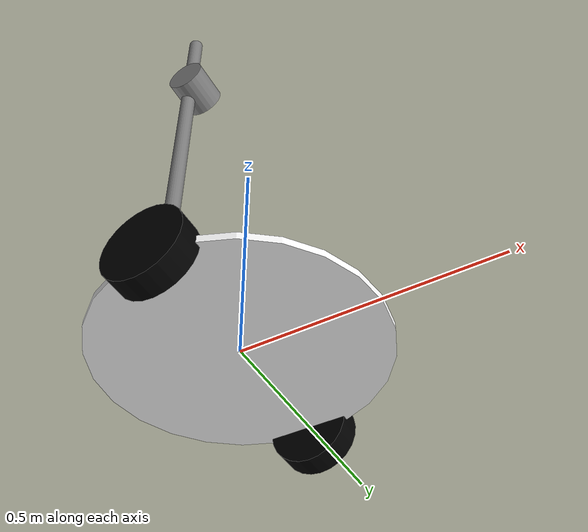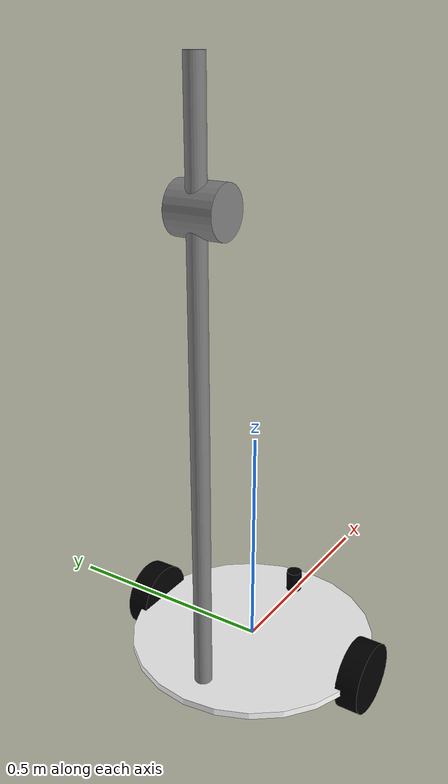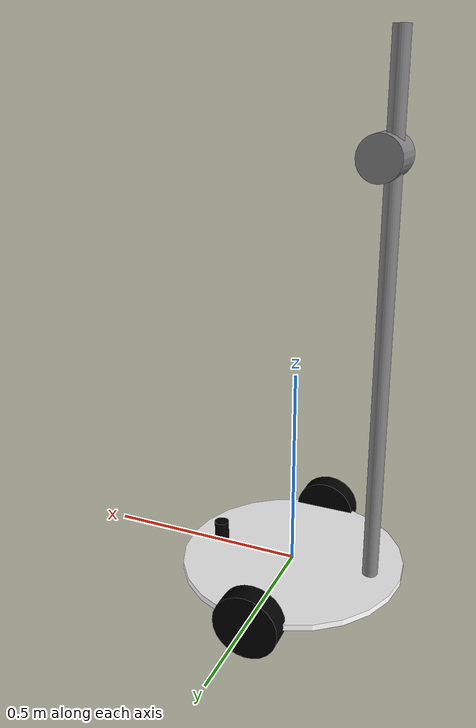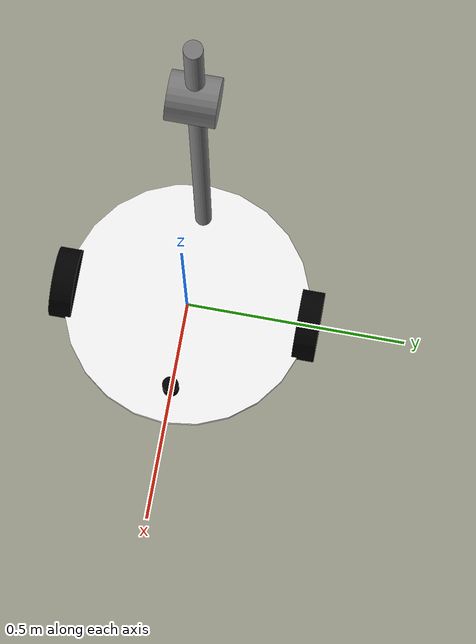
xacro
<?xml version="1.0"?>

<robot xmlns:xacro="http://www.ros.org/wiki/xacro" name="robot">

		<xacro:include filename="base.xacro" />
		<xacro:include filename="lidar.xacro" />
		<xacro:include filename="camera.xacro" />
		<xacro:include filename="motor_wheels.xacro" />
		<xacro:include filename="joints.xacro" />

</robot>

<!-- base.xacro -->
<!-- TODO medir parametros inerciais reais -->
<robot xmlns:xacro="https://www.ros.org/wiki/xacro">

	<material name="gray">
  		<color rgba="0.5 0.5 0.5 1"/>
  	</material>

	<material name="white">
  		<color rgba="1 1 1 1"/>
  	</material>

	<!-- Chutado -->
	<xacro:property name="CHASSI_MASS" value="1.0"/>

	<!-- Medidos -->
	<xacro:property name="CHASSI_RADIUS" value="0.28"/>
	<xacro:property name="CHASSI_THICKNESS" value="0.0155"/>

	<!-- Virtual base as recommended -->
	<link name="base_link"/>

	<!-- Real base, named as chassi -->
	<link name="chassi_link">

			<visual>
					<geometry>
							<cylinder length="${CHASSI_THICKNESS}" radius="${CHASSI_RADIUS}" />
					</geometry>

					<origin xyz="0 0 0" rpy="0 0 0" />
					<material name="white"/>
			</visual>

			<collision>
					<geometry>
						<cylinder length="${CHASSI_THICKNESS}" radius="${CHASSI_RADIUS}"/>
					</geometry>

					<origin xyz="0 0 0" rpy="0 0 0" />
			</collision>

			<inertial>
					<mass value="${CHASSI_MASS}"/>

					<!-- Centro de massa -->
					<origin xyz="0 0 0" rpy="0 0 0"/>
					<inertia
							ixx="${(1/12) * CHASSI_MASS * (3 * CHASSI_RADIUS * CHASSI_RADIUS + CHASSI_THICKNESS * CHASSI_THICKNESS)}" ixy="0" ixz="0"
							iyy="${(1/12) * CHASSI_MASS * (3 * CHASSI_RADIUS * CHASSI_RADIUS + CHASSI_THICKNESS * CHASSI_THICKNESS)}" iyz="0"
							izz="${(1/2) * CHASSI_MASS * CHASSI_RADIUS * CHASSI_RADIUS}"/>
			</inertial>
	</link>

	<!-- Chutado -->
    <xacro:property name="SUPPORT_MASS" value="0.5"/>

    <!-- Medidos -->
    <xacro:property name="SUPPORT_RADIUS" value="0.019"/>
    <xacro:property name="SUPPORT_THICKNESS" value="1.25"/>

	<link name="vertical_support_link">

			<visual>
				<geometry>
						<cylinder length="${SUPPORT_THICKNESS}" radius="${SUPPORT_RADIUS}"/>
				</geometry>

				<origin xyz="0 0 ${(1/2) * SUPPORT_THICKNESS}" rpy="0 0 0"/>

				<material name="gray"/>
			</visual>

			<collision>
				<geometry>
            			<cylinder length="${SUPPORT_THICKNESS}" radius="${SUPPORT_RADIUS}"/>
            	</geometry>

            	<origin xyz="0 0 ${(1/2) * SUPPORT_THICKNESS}" rpy="0 0 0"/>
			</collision>

			<inertial>
					<mass value="${SUPPORT_MASS}"/>

					<origin xyz="0 0 0" rpy="0 0 0"/>

					<inertia
                    		ixx="${(1/12) * SUPPORT_MASS * (3 * SUPPORT_RADIUS * SUPPORT_RADIUS +SUPPORT_THICKNESS * SUPPORT_THICKNESS)}" ixy="0" ixz="0"
                    		iyy="${(1/12) * SUPPORT_MASS * (3 * SUPPORT_RADIUS * SUPPORT_RADIUS + SUPPORT_THICKNESS * SUPPORT_THICKNESS)}" iyz="0"
                    		izz="${(1/2) * SUPPORT_MASS * SUPPORT_RADIUS * SUPPORT_RADIUS}"/>

			</inertial>
	</link>

</robot>

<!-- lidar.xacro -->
<robot xmlns:xacro="https://www.ros.org/wiki/xacro">

	<!-- Chutado -->
	<xacro:property name="LIDAR_MASS" value="1.0"/>

	<!-- Medidos -->
	<xacro:property name="LIDAR_RADIUS" value="0.0185"/>
	<xacro:property name="LIDAR_THICKNESS" value="0.05"/>

	<link name="lidar_link">

			<visual>
					<geometry>
							<cylinder length="${LIDAR_THICKNESS}" radius="${LIDAR_RADIUS}" />
					</geometry>

					<origin xyz="0 0 ${(1/2)*LIDAR_THICKNESS}" rpy="0 0 0" />
					<material name="black"/>
			</visual>

			<collision>
					<geometry>
						<cylinder length="${LIDAR_THICKNESS}" radius="${LIDAR_RADIUS}"/>
					</geometry>

					<origin xyz="0 0 ${(1/2)*LIDAR_THICKNESS}" rpy="0 0 0" />
			</collision>

			<inertial>
					<mass value="${LIDAR_MASS}"/>

					<!-- Centro de massa -->
					<origin xyz="0 0 0" rpy="0 0 0"/>
					<inertia
							ixx="${(1/12) * LIDAR_MASS * (3 * LIDAR_RADIUS * LIDAR_RADIUS + LIDAR_THICKNESS * LIDAR_THICKNESS)}" ixy="0" ixz="0"
							iyy="${(1/12) * LIDAR_MASS * (3 * LIDAR_RADIUS * LIDAR_RADIUS + LIDAR_THICKNESS * LIDAR_THICKNESS)}" iyz="0"
							izz="${(1/2) * LIDAR_MASS * LIDAR_RADIUS * LIDAR_RADIUS}"/>
			</inertial>
	</link>

</robot>

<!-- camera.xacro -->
<robot xmlns:xacro="https://www.ros.org/wiki/xacro">

	<!-- Chutado -->
	<xacro:property name="CAMERA_MASS" value="1.0"/>

	<!-- Medidos -->
	<xacro:property name="CAMERA_RADIUS" value="0.05"/>
	<xacro:property name="CAMERA_THICKNESS" value="0.1"/>

	<link name="camera_link">

			<visual>
					<geometry>
							<cylinder length="${CAMERA_THICKNESS}" radius="${CAMERA_RADIUS}" />
					</geometry>

					<origin xyz="0 0 0" rpy="0 0 0" />
					<material name="gray"/>
			</visual>

			<collision>
					<geometry>
						<cylinder length="${CAMERA_THICKNESS}" radius="${CAMERA_RADIUS}"/>
					</geometry>

					<origin xyz="0 0 0" rpy="0 0 0" />
			</collision>

			<inertial>
					<mass value="${CAMERA_MASS}"/>

					<!-- Centro de massa -->
					<origin xyz="0 0 0" rpy="0 0 0"/>
					<inertia
							ixx="${(1/12) * CAMERA_MASS * (3 * CAMERA_RADIUS * CAMERA_RADIUS + CAMERA_THICKNESS * CAMERA_THICKNESS)}" ixy="0" ixz="0"
							iyy="${(1/12) * CAMERA_MASS * (3 * CAMERA_RADIUS * CAMERA_RADIUS + CAMERA_THICKNESS * CAMERA_THICKNESS)}" iyz="0"
							izz="${(1/2) * CAMERA_MASS * CAMERA_RADIUS * CAMERA_RADIUS}"/>
			</inertial>
	</link>

</robot>

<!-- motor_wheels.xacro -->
<robot xmlns:xacro="http://www.ros.org/wiki/xacro">

	<material name="black">
		<color rgba="0 0 0 1"/>
	</material>

	<!-- Wheel Properties -->
	<xacro:property name="WHEEL_THICKNESS" value="0.051" />
	<xacro:property name="WHEEL_RADIUS" value="0.08" />

	<!-- Chutado -->
	<xacro:property name="WHEEL_MASS" value="1" />

	<xacro:macro name="wheel_link" params="position_prefix">

		<link name="${position_prefix}_wheel_link">

			<visual>

				<geometry>
					<cylinder length="${WHEEL_THICKNESS}" radius="${WHEEL_RADIUS}" />
				</geometry>
				<origin xyz="0 0 0" rpy="0 0 0" />
				<material name="black" />

			</visual>

			<collision>

				<geometry>
					<cylinder length="${WHEEL_THICKNESS}" radius="${WHEEL_RADIUS}" />
				</geometry>
				<origin xyz="0 0 0" rpy="0 0 0" />

			</collision>

			<inertial>
				<mass value="${WHEEL_MASS}" />

				<!-- Centro de massa -->
				<origin xyz="0 0 0" rpy="0 0 0" />
				<inertia ixx="${(1/12) * WHEEL_MASS * (3 * WHEEL_RADIUS * WHEEL_RADIUS + WHEEL_THICKNESS * WHEEL_THICKNESS)}" ixy="0" ixz="0" iyy="${(1/12) * WHEEL_MASS * (3 * WHEEL_RADIUS * WHEEL_RADIUS + WHEEL_THICKNESS * WHEEL_THICKNESS)}" iyz="0" izz="${(1/2) * WHEEL_MASS * WHEEL_RADIUS * WHEEL_RADIUS}" />
			</inertial>

		</link>
	</xacro:macro>

	<xacro:wheel_link position_prefix="left" />
	<xacro:wheel_link position_prefix="right" />

</robot>

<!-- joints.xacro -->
<robot xmlns:xacro="http://www.ros.org/wiki/xacro">

	<!-- Constants-->
	<xacro:property name="PI" value="3.14159" />

	<!-- Joint distance parameters -->
	<xacro:property name="CAMERA_HEIGHT" value="${(4/5)*SUPPORT_THICKNESS}" />
	<xacro:property name="BASE_LIDAR_DIST" value="0.2" />
	<xacro:property name="BASE_WHEEL_DIST" value="0.28" />
	<xacro:property name="BASE_SUPPORT_DIST" value="0.205" />
	<xacro:property name="CHASSI_HEIGHT" value="0.05" />

	<!-- To connect virtual (center of rotation) base to real one (chassi) -->
	<joint name="base_chassi_joint" type="fixed">
		<parent link="base_link" />
		<child link="chassi_link" />

		<origin xyz="-0.001 0 0" rpy="0 0 0" />
	</joint>

	<joint name="base_support_joint" type="fixed">

		<parent link="base_link" />
		<child link="vertical_support_link" />

		<origin xyz="${-BASE_SUPPORT_DIST} 0 ${(1/2)*CHASSI_THICKNESS}" rpy="0 0 0" />

	</joint>

	<!-- By the conventions of ROS urdf/tf, left side is positive y axis, as so, side parameter is 1 if left, -1 if right-->
	<xacro:macro name="wheel_joint" params="position_prefix side">

		<joint name="${position_prefix}_wheel_joint" type="continuous">
			<parent link="base_link" />
			<child link="${position_prefix}_wheel_link" />

			<!-- Adjust position based on the side that's on-->
			<origin xyz="0 ${side*BASE_WHEEL_DIST} 0" rpy="${-(1/2)*PI*side} 0 0" />

			<!-- Positive around counterclockwise z-axis -->
			<axis xyz="0 0 ${side}" />
		</joint>

	</xacro:macro>

	<!-- Define actual joints-->
	<xacro:wheel_joint position_prefix="left" side="1" />
	<xacro:wheel_joint position_prefix="right" side="-1" />

	<!-- Joint to connect lidar to base -->
	<joint name="base_lidar_joint" type="fixed">

		<parent link="base_link" />
		<child link="lidar_link" />

		<origin xyz="${BASE_LIDAR_DIST} 0 ${(1/2)*CHASSI_THICKNESS}" rpy="0 0 0" />

	</joint>

	<!-- Joint to connect camera to support -->
	<joint name="vertical_support_camera_joint" type="fixed">

		<parent link="vertical_support_link" />
		<child link="camera_link" />

		<origin xyz="${SUPPORT_RADIUS} 0 ${CAMERA_HEIGHT}" rpy="${PI/2} 0 0" />

	</joint>
</robot>
